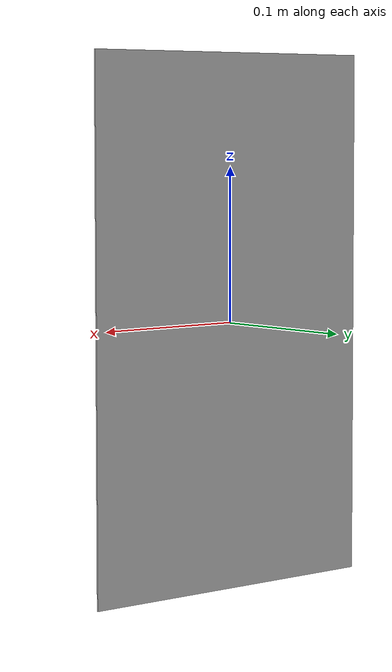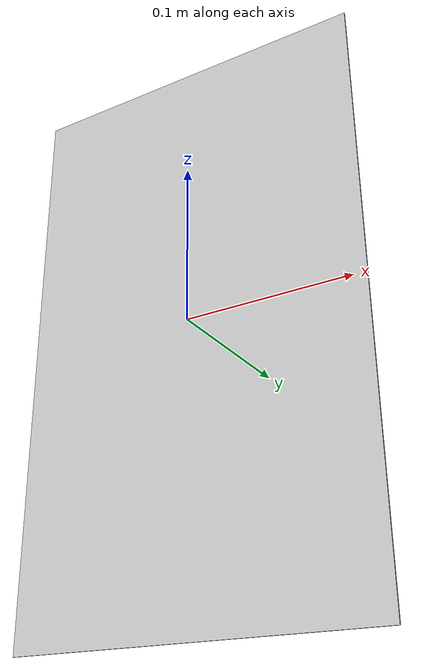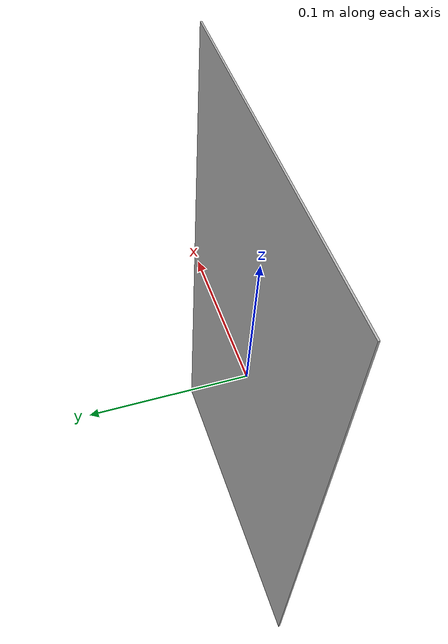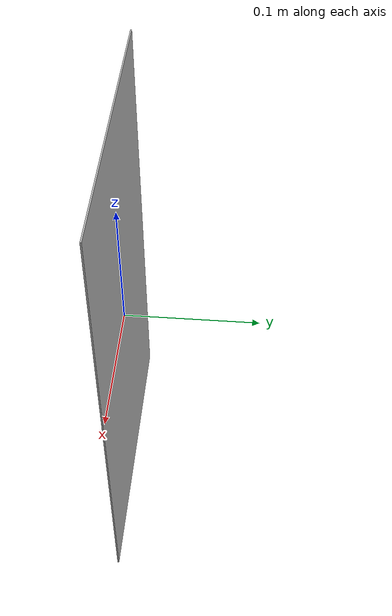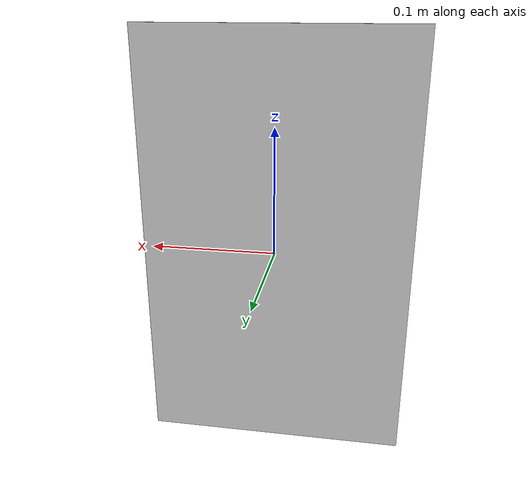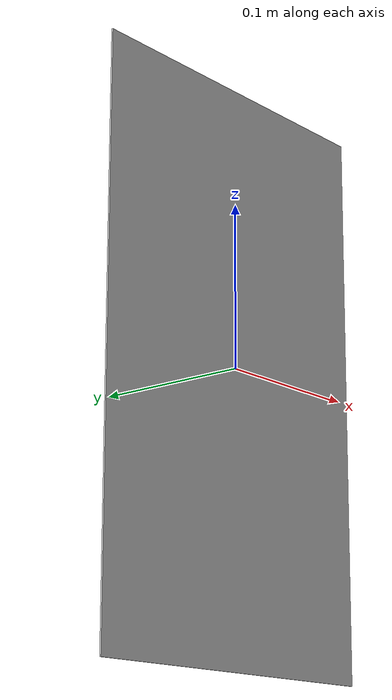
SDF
<?xml version="1.0" ?>
<sdf version="1.6">
  <model name="Tag10">
    <static>true</static>
    <link name="link">
      <pose>0 0 0 0 0 0</pose>
      <collision name="collision">
        <geometry>
          <box>
            <size>0.215 0.001 0.345</size>
          </box>
        </geometry>
      </collision>
      <visual name="visual">
        <cast_shadows>false</cast_shadows>
        <geometry>
          <box>
            <size>0.215 0.001 0.345</size>
          </box>
        </geometry>
        <material>
          <script>
            <uri>model://main_hall_tags/Tag10/materials/scripts</uri>
	    <uri>model://main_hall_tags/Tag10/materials/textures</uri>
	    <name>vrc/Tag10</name>
          </script>
        </material>
      </visual>
    </link>
  </model>
</sdf>
